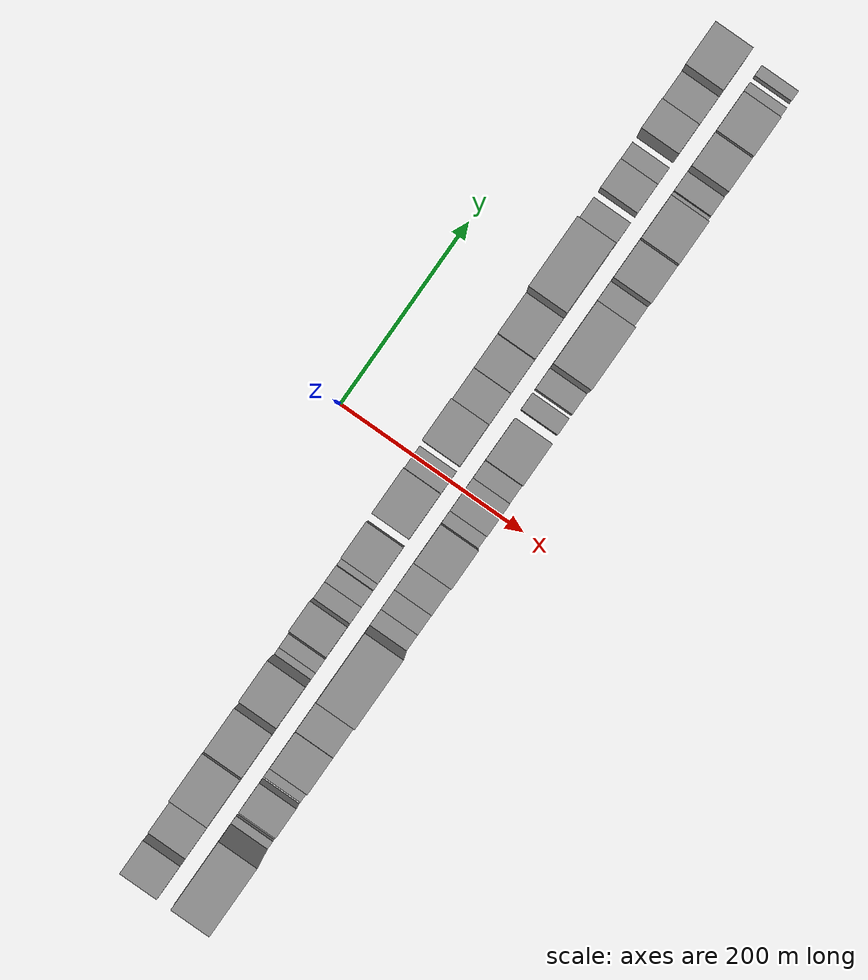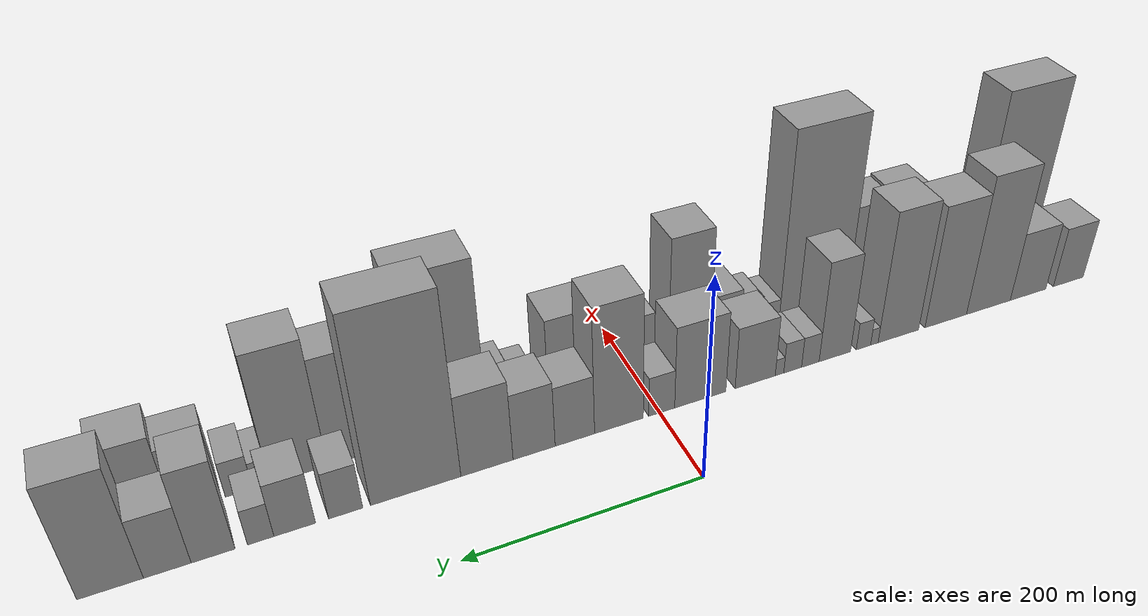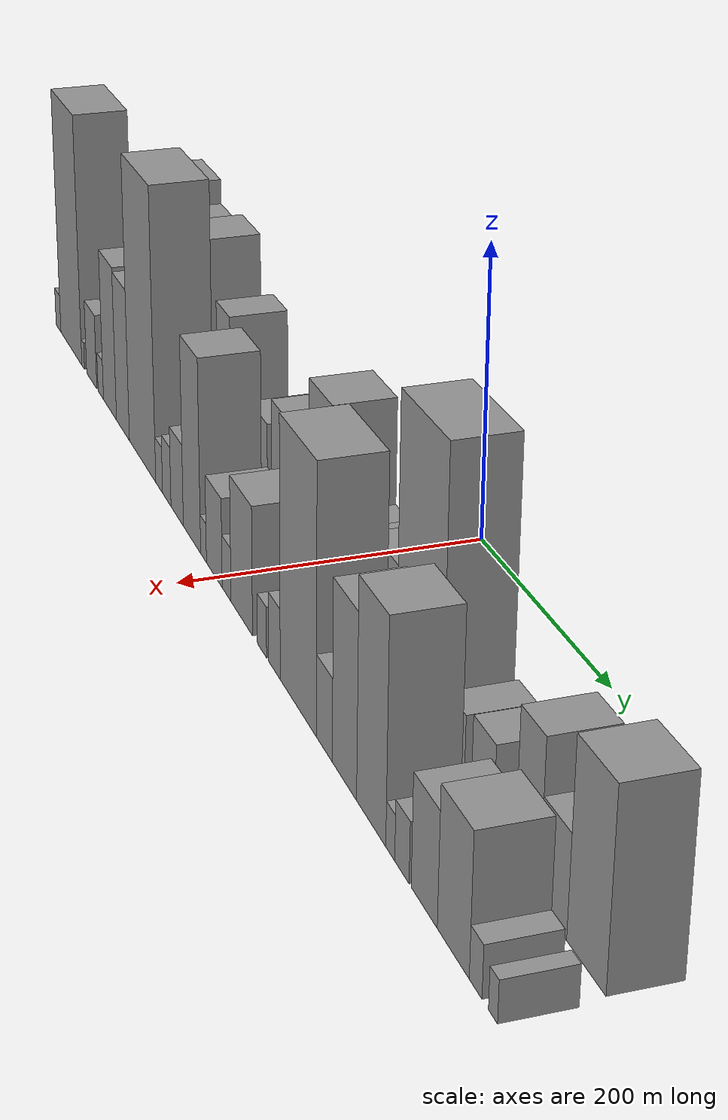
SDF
<sdf version="1.6">
 <world name="default">
  <scene>
   <sky><clouds><speed>12</speed></clouds></sky>
   <ambient>0.4 0.4 0.4 1</ambient>
   <background>0.7 0.7 0.7 1</background>
   <shadows>1</shadows>
  </scene>
  <gravity>0 0 -9.8066</gravity>
  <magnetic_field>6e-06 2.3e-05 -4.2e-05</magnetic_field>
  <physics default="0" name="default_physics" type="ode">
   <ode>
    <solver>
     <type>quick</type>
     <iters>10</iters>
     <sor>1.0</sor>
     <use_dynamic_moi_rescaling>0</use_dynamic_moi_rescaling>
    </solver>
    <constraints>
     <cfm>0</cfm>
     <erp>0.2</erp>
     <contact_max_correcting_vel>100</contact_max_correcting_vel>
     <contact_surface_layer>0.001</contact_surface_layer>
    </constraints>
   </ode>
   <max_step_size>0.004</max_step_size>
   <real_time_factor>1</real_time_factor>
   <real_time_update_rate>250</real_time_update_rate>
  </physics>
  <light name="sun" type="directional">
   <pose>0 0 10 0 0 0</pose>
   <diffuse>0.8 0.8 0.8 1</diffuse>
   <specular>0.2 0.2 0.2 1</specular>
   <attenuation>
    <range>1000</range>
    <constant>0.9</constant>
    <linear>0.01</linear>
    <quadratic>0.001</quadratic>
   </attenuation>
   <direction>-0.5 0.1 -0.9</direction>
  </light>
  <model name="building_1">
   <static>1</static>
   <pose>100.0000 -432.0484 0 0.000000 0.000000 0.000000</pose>
   <link name="link">
    <pose>0 0 33.00 0 0 0</pose>
    <collision name="collision"><geometry><box><size>40.0000 35.9032 66.0000</size></box></geometry></collision>
    <visual name="visual">
     <cast_shadows>0</cast_shadows>
     <geometry><box><size>40.0000 35.9032 66.0000</size></box></geometry>
     <material>
      <script>
       <uri>model://grey_wall/materials/scripts</uri>
       <uri>model://grey_wall/materials/textures</uri>
       <name>vrc/grey_wall</name>
      </script>
     </material>
    </visual>
   </link>
  </model>
  <model name="building_2">
   <static>1</static>
   <pose>100.0000 -384.2388 0 0.000000 0.000000 0.000000</pose>
   <link name="link">
    <pose>0 0 37.50 0 0 0</pose>
    <collision name="collision"><geometry><box><size>40.0000 41.7160 75.0000</size></box></geometry></collision>
    <visual name="visual">
     <cast_shadows>0</cast_shadows>
     <geometry><box><size>40.0000 41.7160 75.0000</size></box></geometry>
     <material>
      <script>
       <uri>model://grey_wall/materials/scripts</uri>
       <uri>model://grey_wall/materials/textures</uri>
       <name>vrc/grey_wall</name>
      </script>
     </material>
    </visual>
   </link>
  </model>
  <model name="building_3">
   <static>1</static>
   <pose>100.0000 -338.3194 0 0.000000 0.000000 0.000000</pose>
   <link name="link">
    <pose>0 0 75.00 0 0 0</pose>
    <collision name="collision"><geometry><box><size>40.0000 50.1228 150.0000</size></box></geometry></collision>
    <visual name="visual">
     <cast_shadows>0</cast_shadows>
     <geometry><box><size>40.0000 50.1228 150.0000</size></box></geometry>
     <material>
      <script>
       <uri>model://grey_wall/materials/scripts</uri>
       <uri>model://grey_wall/materials/textures</uri>
       <name>vrc/grey_wall</name>
      </script>
     </material>
    </visual>
   </link>
  </model>
  <model name="building_4">
   <static>1</static>
   <pose>100.0000 -290.1921 0 0.000000 0.000000 0.000000</pose>
   <link name="link">
    <pose>0 0 66.00 0 0 0</pose>
    <collision name="collision"><geometry><box><size>40.0000 46.1318 132.0000</size></box></geometry></collision>
    <visual name="visual">
     <cast_shadows>0</cast_shadows>
     <geometry><box><size>40.0000 46.1318 132.0000</size></box></geometry>
     <material>
      <script>
       <uri>model://grey_wall/materials/scripts</uri>
       <uri>model://grey_wall/materials/textures</uri>
       <name>vrc/grey_wall</name>
      </script>
     </material>
    </visual>
   </link>
  </model>
  <model name="building_5">
   <static>1</static>
   <pose>100.0000 -238.3165 0 0.000000 0.000000 0.000000</pose>
   <link name="link">
    <pose>0 0 70.50 0 0 0</pose>
    <collision name="collision"><geometry><box><size>40.0000 43.6195 141.0000</size></box></geometry></collision>
    <visual name="visual">
     <cast_shadows>0</cast_shadows>
     <geometry><box><size>40.0000 43.6195 141.0000</size></box></geometry>
     <material>
      <script>
       <uri>model://grey_wall/materials/scripts</uri>
       <uri>model://grey_wall/materials/textures</uri>
       <name>vrc/grey_wall</name>
      </script>
     </material>
    </visual>
   </link>
  </model>
  <model name="building_6">
   <static>1</static>
   <pose>100.0000 -212.5208 0 0.000000 0.000000 0.000000</pose>
   <link name="link">
    <pose>0 0 9.00 0 0 0</pose>
    <collision name="collision"><geometry><box><size>40.0000 7.9718 18.0000</size></box></geometry></collision>
    <visual name="visual">
     <cast_shadows>0</cast_shadows>
     <geometry><box><size>40.0000 7.9718 18.0000</size></box></geometry>
     <material>
      <script>
       <uri>model://grey_wall/materials/scripts</uri>
       <uri>model://grey_wall/materials/textures</uri>
       <name>vrc/grey_wall</name>
      </script>
     </material>
    </visual>
   </link>
  </model>
  <model name="building_7">
   <static>1</static>
   <pose>100.0000 -200.9967 0 0.000000 0.000000 0.000000</pose>
   <link name="link">
    <pose>0 0 15.00 0 0 0</pose>
    <collision name="collision"><geometry><box><size>40.0000 15.0765 30.0000</size></box></geometry></collision>
    <visual name="visual">
     <cast_shadows>0</cast_shadows>
     <geometry><box><size>40.0000 15.0765 30.0000</size></box></geometry>
     <material>
      <script>
       <uri>model://grey_wall/materials/scripts</uri>
       <uri>model://grey_wall/materials/textures</uri>
       <name>vrc/grey_wall</name>
      </script>
     </material>
    </visual>
   </link>
  </model>
  <model name="building_8">
   <static>1</static>
   <pose>100.0000 -171.2387 0 0.000000 0.000000 0.000000</pose>
   <link name="link">
    <pose>0 0 54.00 0 0 0</pose>
    <collision name="collision"><geometry><box><size>40.0000 32.4394 108.0000</size></box></geometry></collision>
    <visual name="visual">
     <cast_shadows>0</cast_shadows>
     <geometry><box><size>40.0000 32.4394 108.0000</size></box></geometry>
     <material>
      <script>
       <uri>model://grey_wall/materials/scripts</uri>
       <uri>model://grey_wall/materials/textures</uri>
       <name>vrc/grey_wall</name>
      </script>
     </material>
    </visual>
   </link>
  </model>
  <model name="building_9">
   <static>1</static>
   <pose>100.0000 -146.1011 0 0.000000 0.000000 0.000000</pose>
   <link name="link">
    <pose>0 0 16.50 0 0 0</pose>
    <collision name="collision"><geometry><box><size>40.0000 17.8359 33.0000</size></box></geometry></collision>
    <visual name="visual">
     <cast_shadows>0</cast_shadows>
     <geometry><box><size>40.0000 17.8359 33.0000</size></box></geometry>
     <material>
      <script>
       <uri>model://grey_wall/materials/scripts</uri>
       <uri>model://grey_wall/materials/textures</uri>
       <name>vrc/grey_wall</name>
      </script>
     </material>
    </visual>
   </link>
  </model>
  <model name="building_10">
   <static>1</static>
   <pose>100.0000 -128.2102 0 0.000000 0.000000 0.000000</pose>
   <link name="link">
    <pose>0 0 16.50 0 0 0</pose>
    <collision name="collision"><geometry><box><size>40.0000 17.9459 33.0000</size></box></geometry></collision>
    <visual name="visual">
     <cast_shadows>0</cast_shadows>
     <geometry><box><size>40.0000 17.9459 33.0000</size></box></geometry>
     <material>
      <script>
       <uri>model://grey_wall/materials/scripts</uri>
       <uri>model://grey_wall/materials/textures</uri>
       <name>vrc/grey_wall</name>
      </script>
     </material>
    </visual>
   </link>
  </model>
  <model name="building_11">
   <static>1</static>
   <pose>100.0000 -115.0051 0 0.000000 0.000000 0.000000</pose>
   <link name="link">
    <pose>0 0 9.00 0 0 0</pose>
    <collision name="collision"><geometry><box><size>40.0000 8.4643 18.0000</size></box></geometry></collision>
    <visual name="visual">
     <cast_shadows>0</cast_shadows>
     <geometry><box><size>40.0000 8.4643 18.0000</size></box></geometry>
     <material>
      <script>
       <uri>model://grey_wall/materials/scripts</uri>
       <uri>model://grey_wall/materials/textures</uri>
       <name>vrc/grey_wall</name>
      </script>
     </material>
    </visual>
   </link>
  </model>
  <model name="building_12">
   <static>1</static>
   <pose>100.0000 -91.0489 0 0.000000 0.000000 0.000000</pose>
   <link name="link">
    <pose>0 0 33.00 0 0 0</pose>
    <collision name="collision"><geometry><box><size>40.0000 39.4481 66.0000</size></box></geometry></collision>
    <visual name="visual">
     <cast_shadows>0</cast_shadows>
     <geometry><box><size>40.0000 39.4481 66.0000</size></box></geometry>
     <material>
      <script>
       <uri>model://grey_wall/materials/scripts</uri>
       <uri>model://grey_wall/materials/textures</uri>
       <name>vrc/grey_wall</name>
      </script>
     </material>
    </visual>
   </link>
  </model>
  <model name="building_13">
   <static>1</static>
   <pose>100.0000 -38.0263 0 0.000000 0.000000 0.000000</pose>
   <link name="link">
    <pose>0 0 43.50 0 0 0</pose>
    <collision name="collision"><geometry><box><size>40.0000 48.5972 87.0000</size></box></geometry></collision>
    <visual name="visual">
     <cast_shadows>0</cast_shadows>
     <geometry><box><size>40.0000 48.5972 87.0000</size></box></geometry>
     <material>
      <script>
       <uri>model://grey_wall/materials/scripts</uri>
       <uri>model://grey_wall/materials/textures</uri>
       <name>vrc/grey_wall</name>
      </script>
     </material>
    </visual>
   </link>
  </model>
  <model name="building_14">
   <static>1</static>
   <pose>100.0000 -1.7117 0 0.000000 0.000000 0.000000</pose>
   <link name="link">
    <pose>0 0 21.00 0 0 0</pose>
    <collision name="collision"><geometry><box><size>40.0000 24.0318 42.0000</size></box></geometry></collision>
    <visual name="visual">
     <cast_shadows>0</cast_shadows>
     <geometry><box><size>40.0000 24.0318 42.0000</size></box></geometry>
     <material>
      <script>
       <uri>model://grey_wall/materials/scripts</uri>
       <uri>model://grey_wall/materials/textures</uri>
       <name>vrc/grey_wall</name>
      </script>
     </material>
    </visual>
   </link>
  </model>
  <model name="building_15">
   <static>1</static>
   <pose>100.0000 37.3353 0 0.000000 0.000000 0.000000</pose>
   <link name="link">
    <pose>0 0 66.00 0 0 0</pose>
    <collision name="collision"><geometry><box><size>40.0000 44.0622 132.0000</size></box></geometry></collision>
    <visual name="visual">
     <cast_shadows>0</cast_shadows>
     <geometry><box><size>40.0000 44.0622 132.0000</size></box></geometry>
     <material>
      <script>
       <uri>model://grey_wall/materials/scripts</uri>
       <uri>model://grey_wall/materials/textures</uri>
       <name>vrc/grey_wall</name>
      </script>
     </material>
    </visual>
   </link>
  </model>
  <model name="building_16">
   <static>1</static>
   <pose>100.0000 76.6974 0 0.000000 0.000000 0.000000</pose>
   <link name="link">
    <pose>0 0 31.50 0 0 0</pose>
    <collision name="collision"><geometry><box><size>40.0000 34.6620 63.0000</size></box></geometry></collision>
    <visual name="visual">
     <cast_shadows>0</cast_shadows>
     <geometry><box><size>40.0000 34.6620 63.0000</size></box></geometry>
     <material>
      <script>
       <uri>model://grey_wall/materials/scripts</uri>
       <uri>model://grey_wall/materials/textures</uri>
       <name>vrc/grey_wall</name>
      </script>
     </material>
    </visual>
   </link>
  </model>
  <model name="building_17">
   <static>1</static>
   <pose>100.0000 112.1259 0 0.000000 0.000000 0.000000</pose>
   <link name="link">
    <pose>0 0 34.50 0 0 0</pose>
    <collision name="collision"><geometry><box><size>40.0000 36.1951 69.0000</size></box></geometry></collision>
    <visual name="visual">
     <cast_shadows>0</cast_shadows>
     <geometry><box><size>40.0000 36.1951 69.0000</size></box></geometry>
     <material>
      <script>
       <uri>model://grey_wall/materials/scripts</uri>
       <uri>model://grey_wall/materials/textures</uri>
       <name>vrc/grey_wall</name>
      </script>
     </material>
    </visual>
   </link>
  </model>
  <model name="building_18">
   <static>1</static>
   <pose>100.0000 152.0441 0 0.000000 0.000000 0.000000</pose>
   <link name="link">
    <pose>0 0 42.00 0 0 0</pose>
    <collision name="collision"><geometry><box><size>40.0000 43.6412 84.0000</size></box></geometry></collision>
    <visual name="visual">
     <cast_shadows>0</cast_shadows>
     <geometry><box><size>40.0000 43.6412 84.0000</size></box></geometry>
     <material>
      <script>
       <uri>model://grey_wall/materials/scripts</uri>
       <uri>model://grey_wall/materials/textures</uri>
       <name>vrc/grey_wall</name>
      </script>
     </material>
    </visual>
   </link>
  </model>
  <model name="building_19">
   <static>1</static>
   <pose>100.0000 210.2167 0 0.000000 0.000000 0.000000</pose>
   <link name="link">
    <pose>0 0 94.50 0 0 0</pose>
    <collision name="collision"><geometry><box><size>40.0000 72.7040 189.0000</size></box></geometry></collision>
    <visual name="visual">
     <cast_shadows>0</cast_shadows>
     <geometry><box><size>40.0000 72.7040 189.0000</size></box></geometry>
     <material>
      <script>
       <uri>model://grey_wall/materials/scripts</uri>
       <uri>model://grey_wall/materials/textures</uri>
       <name>vrc/grey_wall</name>
      </script>
     </material>
    </visual>
   </link>
  </model>
  <model name="building_20">
   <static>1</static>
   <pose>100.0000 265.7631 0 0.000000 0.000000 0.000000</pose>
   <link name="link">
    <pose>0 0 24.00 0 0 0</pose>
    <collision name="collision"><geometry><box><size>40.0000 26.3887 48.0000</size></box></geometry></collision>
    <visual name="visual">
     <cast_shadows>0</cast_shadows>
     <geometry><box><size>40.0000 26.3887 48.0000</size></box></geometry>
     <material>
      <script>
       <uri>model://grey_wall/materials/scripts</uri>
       <uri>model://grey_wall/materials/textures</uri>
       <name>vrc/grey_wall</name>
      </script>
     </material>
    </visual>
   </link>
  </model>
  <model name="building_21">
   <static>1</static>
   <pose>100.0000 304.5854 0 0.000000 0.000000 0.000000</pose>
   <link name="link">
    <pose>0 0 27.00 0 0 0</pose>
    <collision name="collision"><geometry><box><size>40.0000 31.2559 54.0000</size></box></geometry></collision>
    <visual name="visual">
     <cast_shadows>0</cast_shadows>
     <geometry><box><size>40.0000 31.2559 54.0000</size></box></geometry>
     <material>
      <script>
       <uri>model://grey_wall/materials/scripts</uri>
       <uri>model://grey_wall/materials/textures</uri>
       <name>vrc/grey_wall</name>
      </script>
     </material>
    </visual>
   </link>
  </model>
  <model name="building_22">
   <static>1</static>
   <pose>100.0000 329.9657 0 0.000000 0.000000 0.000000</pose>
   <link name="link">
    <pose>0 0 18.00 0 0 0</pose>
    <collision name="collision"><geometry><box><size>40.0000 19.5048 36.0000</size></box></geometry></collision>
    <visual name="visual">
     <cast_shadows>0</cast_shadows>
     <geometry><box><size>40.0000 19.5048 36.0000</size></box></geometry>
     <material>
      <script>
       <uri>model://grey_wall/materials/scripts</uri>
       <uri>model://grey_wall/materials/textures</uri>
       <name>vrc/grey_wall</name>
      </script>
     </material>
    </visual>
   </link>
  </model>
  <model name="building_23">
   <static>1</static>
   <pose>100.0000 364.5164 0 0.000000 0.000000 0.000000</pose>
   <link name="link">
    <pose>0 0 46.50 0 0 0</pose>
    <collision name="collision"><geometry><box><size>40.0000 31.5965 93.0000</size></box></geometry></collision>
    <visual name="visual">
     <cast_shadows>0</cast_shadows>
     <geometry><box><size>40.0000 31.5965 93.0000</size></box></geometry>
     <material>
      <script>
       <uri>model://grey_wall/materials/scripts</uri>
       <uri>model://grey_wall/materials/textures</uri>
       <name>vrc/grey_wall</name>
      </script>
     </material>
    </visual>
   </link>
  </model>
  <model name="building_24">
   <static>1</static>
   <pose>100.0000 397.0532 0 0.000000 0.000000 0.000000</pose>
   <link name="link">
    <pose>0 0 30.00 0 0 0</pose>
    <collision name="collision"><geometry><box><size>40.0000 33.4770 60.0000</size></box></geometry></collision>
    <visual name="visual">
     <cast_shadows>0</cast_shadows>
     <geometry><box><size>40.0000 33.4770 60.0000</size></box></geometry>
     <material>
      <script>
       <uri>model://grey_wall/materials/scripts</uri>
       <uri>model://grey_wall/materials/textures</uri>
       <name>vrc/grey_wall</name>
      </script>
     </material>
    </visual>
   </link>
  </model>
  <model name="building_25">
   <static>1</static>
   <pose>100.0000 436.5346 0 0.000000 0.000000 0.000000</pose>
   <link name="link">
    <pose>0 0 57.00 0 0 0</pose>
    <collision name="collision"><geometry><box><size>40.0000 45.4857 114.0000</size></box></geometry></collision>
    <visual name="visual">
     <cast_shadows>0</cast_shadows>
     <geometry><box><size>40.0000 45.4857 114.0000</size></box></geometry>
     <material>
      <script>
       <uri>model://grey_wall/materials/scripts</uri>
       <uri>model://grey_wall/materials/textures</uri>
       <name>vrc/grey_wall</name>
      </script>
     </material>
    </visual>
   </link>
  </model>
  <model name="building_26">
   <static>1</static>
   <pose>155.0000 -441.6028 0 0.000000 0.000000 0.000000</pose>
   <link name="link">
    <pose>0 0 15.00 0 0 0</pose>
    <collision name="collision"><geometry><box><size>40.0000 16.7943 30.0000</size></box></geometry></collision>
    <visual name="visual">
     <cast_shadows>0</cast_shadows>
     <geometry><box><size>40.0000 16.7943 30.0000</size></box></geometry>
     <material>
      <script>
       <uri>model://grey_wall/materials/scripts</uri>
       <uri>model://grey_wall/materials/textures</uri>
       <name>vrc/grey_wall</name>
      </script>
     </material>
    </visual>
   </link>
  </model>
  <model name="building_27">
   <static>1</static>
   <pose>155.0000 -397.8201 0 0.000000 0.000000 0.000000</pose>
   <link name="link">
    <pose>0 0 96.00 0 0 0</pose>
    <collision name="collision"><geometry><box><size>40.0000 70.7711 192.0000</size></box></geometry></collision>
    <visual name="visual">
     <cast_shadows>0</cast_shadows>
     <geometry><box><size>40.0000 70.7711 192.0000</size></box></geometry>
     <material>
      <script>
       <uri>model://grey_wall/materials/scripts</uri>
       <uri>model://grey_wall/materials/textures</uri>
       <name>vrc/grey_wall</name>
      </script>
     </material>
    </visual>
   </link>
  </model>
  <model name="building_28">
   <static>1</static>
   <pose>155.0000 -358.2051 0 0.000000 0.000000 0.000000</pose>
   <link name="link">
    <pose>0 0 10.50 0 0 0</pose>
    <collision name="collision"><geometry><box><size>40.0000 8.4590 21.0000</size></box></geometry></collision>
    <visual name="visual">
     <cast_shadows>0</cast_shadows>
     <geometry><box><size>40.0000 8.4590 21.0000</size></box></geometry>
     <material>
      <script>
       <uri>model://grey_wall/materials/scripts</uri>
       <uri>model://grey_wall/materials/textures</uri>
       <name>vrc/grey_wall</name>
      </script>
     </material>
    </visual>
   </link>
  </model>
  <model name="building_29">
   <static>1</static>
   <pose>155.0000 -330.8779 0 0.000000 0.000000 0.000000</pose>
   <link name="link">
    <pose>0 0 28.50 0 0 0</pose>
    <collision name="collision"><geometry><box><size>40.0000 32.1955 57.0000</size></box></geometry></collision>
    <visual name="visual">
     <cast_shadows>0</cast_shadows>
     <geometry><box><size>40.0000 32.1955 57.0000</size></box></geometry>
     <material>
      <script>
       <uri>model://grey_wall/materials/scripts</uri>
       <uri>model://grey_wall/materials/textures</uri>
       <name>vrc/grey_wall</name>
      </script>
     </material>
    </visual>
   </link>
  </model>
  <model name="building_30">
   <static>1</static>
   <pose>155.0000 -302.4395 0 0.000000 0.000000 0.000000</pose>
   <link name="link">
    <pose>0 0 15.00 0 0 0</pose>
    <collision name="collision"><geometry><box><size>40.0000 16.6812 30.0000</size></box></geometry></collision>
    <visual name="visual">
     <cast_shadows>0</cast_shadows>
     <geometry><box><size>40.0000 16.6812 30.0000</size></box></geometry>
     <material>
      <script>
       <uri>model://grey_wall/materials/scripts</uri>
       <uri>model://grey_wall/materials/textures</uri>
       <name>vrc/grey_wall</name>
      </script>
     </material>
    </visual>
   </link>
  </model>
  <model name="building_31">
   <static>1</static>
   <pose>155.0000 -274.6163 0 0.000000 0.000000 0.000000</pose>
   <link name="link">
    <pose>0 0 57.00 0 0 0</pose>
    <collision name="collision"><geometry><box><size>40.0000 38.9651 114.0000</size></box></geometry></collision>
    <visual name="visual">
     <cast_shadows>0</cast_shadows>
     <geometry><box><size>40.0000 38.9651 114.0000</size></box></geometry>
     <material>
      <script>
       <uri>model://grey_wall/materials/scripts</uri>
       <uri>model://grey_wall/materials/textures</uri>
       <name>vrc/grey_wall</name>
      </script>
     </material>
    </visual>
   </link>
  </model>
  <model name="building_32">
   <static>1</static>
   <pose>155.0000 -236.4197 0 0.000000 0.000000 0.000000</pose>
   <link name="link">
    <pose>0 0 55.50 0 0 0</pose>
    <collision name="collision"><geometry><box><size>40.0000 37.4281 111.0000</size></box></geometry></collision>
    <visual name="visual">
     <cast_shadows>0</cast_shadows>
     <geometry><box><size>40.0000 37.4281 111.0000</size></box></geometry>
     <material>
      <script>
       <uri>model://grey_wall/materials/scripts</uri>
       <uri>model://grey_wall/materials/textures</uri>
       <name>vrc/grey_wall</name>
      </script>
     </material>
    </visual>
   </link>
  </model>
  <model name="building_33">
   <static>1</static>
   <pose>155.0000 -181.7730 0 0.000000 0.000000 0.000000</pose>
   <link name="link">
    <pose>0 0 103.50 0 0 0</pose>
    <collision name="collision"><geometry><box><size>40.0000 71.8654 207.0000</size></box></geometry></collision>
    <visual name="visual">
     <cast_shadows>0</cast_shadows>
     <geometry><box><size>40.0000 71.8654 207.0000</size></box></geometry>
     <material>
      <script>
       <uri>model://grey_wall/materials/scripts</uri>
       <uri>model://grey_wall/materials/textures</uri>
       <name>vrc/grey_wall</name>
      </script>
     </material>
    </visual>
   </link>
  </model>
  <model name="building_34">
   <static>1</static>
   <pose>155.0000 -137.0189 0 0.000000 0.000000 0.000000</pose>
   <link name="link">
    <pose>0 0 16.50 0 0 0</pose>
    <collision name="collision"><geometry><box><size>40.0000 17.6427 33.0000</size></box></geometry></collision>
    <visual name="visual">
     <cast_shadows>0</cast_shadows>
     <geometry><box><size>40.0000 17.6427 33.0000</size></box></geometry>
     <material>
      <script>
       <uri>model://grey_wall/materials/scripts</uri>
       <uri>model://grey_wall/materials/textures</uri>
       <name>vrc/grey_wall</name>
      </script>
     </material>
    </visual>
   </link>
  </model>
  <model name="building_35">
   <static>1</static>
   <pose>155.0000 -117.4254 0 0.000000 0.000000 0.000000</pose>
   <link name="link">
    <pose>0 0 21.00 0 0 0</pose>
    <collision name="collision"><geometry><box><size>40.0000 21.5443 42.0000</size></box></geometry></collision>
    <visual name="visual">
     <cast_shadows>0</cast_shadows>
     <geometry><box><size>40.0000 21.5443 42.0000</size></box></geometry>
     <material>
      <script>
       <uri>model://grey_wall/materials/scripts</uri>
       <uri>model://grey_wall/materials/textures</uri>
       <name>vrc/grey_wall</name>
      </script>
     </material>
    </visual>
   </link>
  </model>
  <model name="building_36">
   <static>1</static>
   <pose>155.0000 -91.2971 0 0.000000 0.000000 0.000000</pose>
   <link name="link">
    <pose>0 0 28.50 0 0 0</pose>
    <collision name="collision"><geometry><box><size>40.0000 30.7123 57.0000</size></box></geometry></collision>
    <visual name="visual">
     <cast_shadows>0</cast_shadows>
     <geometry><box><size>40.0000 30.7123 57.0000</size></box></geometry>
     <material>
      <script>
       <uri>model://grey_wall/materials/scripts</uri>
       <uri>model://grey_wall/materials/textures</uri>
       <name>vrc/grey_wall</name>
      </script>
     </material>
    </visual>
   </link>
  </model>
  <model name="building_37">
   <static>1</static>
   <pose>155.0000 -55.3726 0 0.000000 0.000000 0.000000</pose>
   <link name="link">
    <pose>0 0 66.00 0 0 0</pose>
    <collision name="collision"><geometry><box><size>40.0000 41.1367 132.0000</size></box></geometry></collision>
    <visual name="visual">
     <cast_shadows>0</cast_shadows>
     <geometry><box><size>40.0000 41.1367 132.0000</size></box></geometry>
     <material>
      <script>
       <uri>model://grey_wall/materials/scripts</uri>
       <uri>model://grey_wall/materials/textures</uri>
       <name>vrc/grey_wall</name>
      </script>
     </material>
    </visual>
   </link>
  </model>
  <model name="building_38">
   <static>1</static>
   <pose>155.0000 -28.1256 0 0.000000 0.000000 0.000000</pose>
   <link name="link">
    <pose>0 0 13.50 0 0 0</pose>
    <collision name="collision"><geometry><box><size>40.0000 13.3572 27.0000</size></box></geometry></collision>
    <visual name="visual">
     <cast_shadows>0</cast_shadows>
     <geometry><box><size>40.0000 13.3572 27.0000</size></box></geometry>
     <material>
      <script>
       <uri>model://grey_wall/materials/scripts</uri>
       <uri>model://grey_wall/materials/textures</uri>
       <name>vrc/grey_wall</name>
      </script>
     </material>
    </visual>
   </link>
  </model>
  <model name="building_39">
   <static>1</static>
   <pose>155.0000 -3.6810 0 0.000000 0.000000 0.000000</pose>
   <link name="link">
    <pose>0 0 30.00 0 0 0</pose>
    <collision name="collision"><geometry><box><size>40.0000 35.5319 60.0000</size></box></geometry></collision>
    <visual name="visual">
     <cast_shadows>0</cast_shadows>
     <geometry><box><size>40.0000 35.5319 60.0000</size></box></geometry>
     <material>
      <script>
       <uri>model://grey_wall/materials/scripts</uri>
       <uri>model://grey_wall/materials/textures</uri>
       <name>vrc/grey_wall</name>
      </script>
     </material>
    </visual>
   </link>
  </model>
  <model name="building_40">
   <static>1</static>
   <pose>155.0000 23.6299 0 0.000000 0.000000 0.000000</pose>
   <link name="link">
    <pose>0 0 18.00 0 0 0</pose>
    <collision name="collision"><geometry><box><size>40.0000 19.0899 36.0000</size></box></geometry></collision>
    <visual name="visual">
     <cast_shadows>0</cast_shadows>
     <geometry><box><size>40.0000 19.0899 36.0000</size></box></geometry>
     <material>
      <script>
       <uri>model://grey_wall/materials/scripts</uri>
       <uri>model://grey_wall/materials/textures</uri>
       <name>vrc/grey_wall</name>
      </script>
     </material>
    </visual>
   </link>
  </model>
  <model name="building_41">
   <static>1</static>
   <pose>155.0000 55.7458 0 0.000000 0.000000 0.000000</pose>
   <link name="link">
    <pose>0 0 42.00 0 0 0</pose>
    <collision name="collision"><geometry><box><size>40.0000 45.1417 84.0000</size></box></geometry></collision>
    <visual name="visual">
     <cast_shadows>0</cast_shadows>
     <geometry><box><size>40.0000 45.1417 84.0000</size></box></geometry>
     <material>
      <script>
       <uri>model://grey_wall/materials/scripts</uri>
       <uri>model://grey_wall/materials/textures</uri>
       <name>vrc/grey_wall</name>
      </script>
     </material>
    </visual>
   </link>
  </model>
  <model name="building_42">
   <static>1</static>
   <pose>155.0000 97.3901 0 0.000000 0.000000 0.000000</pose>
   <link name="link">
    <pose>0 0 16.50 0 0 0</pose>
    <collision name="collision"><geometry><box><size>40.0000 18.1469 33.0000</size></box></geometry></collision>
    <visual name="visual">
     <cast_shadows>0</cast_shadows>
     <geometry><box><size>40.0000 18.1469 33.0000</size></box></geometry>
     <material>
      <script>
       <uri>model://grey_wall/materials/scripts</uri>
       <uri>model://grey_wall/materials/textures</uri>
       <name>vrc/grey_wall</name>
      </script>
     </material>
    </visual>
   </link>
  </model>
  <model name="building_43">
   <static>1</static>
   <pose>155.0000 121.7363 0 0.000000 0.000000 0.000000</pose>
   <link name="link">
    <pose>0 0 22.50 0 0 0</pose>
    <collision name="collision"><geometry><box><size>40.0000 22.5455 45.0000</size></box></geometry></collision>
    <visual name="visual">
     <cast_shadows>0</cast_shadows>
     <geometry><box><size>40.0000 22.5455 45.0000</size></box></geometry>
     <material>
      <script>
       <uri>model://grey_wall/materials/scripts</uri>
       <uri>model://grey_wall/materials/textures</uri>
       <name>vrc/grey_wall</name>
      </script>
     </material>
    </visual>
   </link>
  </model>
  <model name="building_44">
   <static>1</static>
   <pose>155.0000 165.9777 0 0.000000 0.000000 0.000000</pose>
   <link name="link">
    <pose>0 0 82.50 0 0 0</pose>
    <collision name="collision"><geometry><box><size>40.0000 65.9374 165.0000</size></box></geometry></collision>
    <visual name="visual">
     <cast_shadows>0</cast_shadows>
     <geometry><box><size>40.0000 65.9374 165.0000</size></box></geometry>
     <material>
      <script>
       <uri>model://grey_wall/materials/scripts</uri>
       <uri>model://grey_wall/materials/textures</uri>
       <name>vrc/grey_wall</name>
      </script>
     </material>
    </visual>
   </link>
  </model>
  <model name="building_45">
   <static>1</static>
   <pose>155.0000 212.7716 0 0.000000 0.000000 0.000000</pose>
   <link name="link">
    <pose>0 0 25.50 0 0 0</pose>
    <collision name="collision"><geometry><box><size>40.0000 27.6503 51.0000</size></box></geometry></collision>
    <visual name="visual">
     <cast_shadows>0</cast_shadows>
     <geometry><box><size>40.0000 27.6503 51.0000</size></box></geometry>
     <material>
      <script>
       <uri>model://grey_wall/materials/scripts</uri>
       <uri>model://grey_wall/materials/textures</uri>
       <name>vrc/grey_wall</name>
      </script>
     </material>
    </visual>
   </link>
  </model>
  <model name="building_46">
   <static>1</static>
   <pose>155.0000 246.6674 0 0.000000 0.000000 0.000000</pose>
   <link name="link">
    <pose>0 0 55.50 0 0 0</pose>
    <collision name="collision"><geometry><box><size>40.0000 40.1415 111.0000</size></box></geometry></collision>
    <visual name="visual">
     <cast_shadows>0</cast_shadows>
     <geometry><box><size>40.0000 40.1415 111.0000</size></box></geometry>
     <material>
      <script>
       <uri>model://grey_wall/materials/scripts</uri>
       <uri>model://grey_wall/materials/textures</uri>
       <name>vrc/grey_wall</name>
      </script>
     </material>
    </visual>
   </link>
  </model>
  <model name="building_47">
   <static>1</static>
   <pose>155.0000 289.4686 0 0.000000 0.000000 0.000000</pose>
   <link name="link">
    <pose>0 0 66.00 0 0 0</pose>
    <collision name="collision"><geometry><box><size>40.0000 45.4609 132.0000</size></box></geometry></collision>
    <visual name="visual">
     <cast_shadows>0</cast_shadows>
     <geometry><box><size>40.0000 45.4609 132.0000</size></box></geometry>
     <material>
      <script>
       <uri>model://grey_wall/materials/scripts</uri>
       <uri>model://grey_wall/materials/textures</uri>
       <name>vrc/grey_wall</name>
      </script>
     </material>
    </visual>
   </link>
  </model>
  <model name="building_48">
   <static>1</static>
   <pose>155.0000 318.9162 0 0.000000 0.000000 0.000000</pose>
   <link name="link">
    <pose>0 0 13.50 0 0 0</pose>
    <collision name="collision"><geometry><box><size>40.0000 13.4343 27.0000</size></box></geometry></collision>
    <visual name="visual">
     <cast_shadows>0</cast_shadows>
     <geometry><box><size>40.0000 13.4343 27.0000</size></box></geometry>
     <material>
      <script>
       <uri>model://grey_wall/materials/scripts</uri>
       <uri>model://grey_wall/materials/textures</uri>
       <name>vrc/grey_wall</name>
      </script>
     </material>
    </visual>
   </link>
  </model>
  <model name="building_49">
   <static>1</static>
   <pose>155.0000 336.0787 0 0.000000 0.000000 0.000000</pose>
   <link name="link">
    <pose>0 0 18.00 0 0 0</pose>
    <collision name="collision"><geometry><box><size>40.0000 20.8907 36.0000</size></box></geometry></collision>
    <visual name="visual">
     <cast_shadows>0</cast_shadows>
     <geometry><box><size>40.0000 20.8907 36.0000</size></box></geometry>
     <material>
      <script>
       <uri>model://grey_wall/materials/scripts</uri>
       <uri>model://grey_wall/materials/textures</uri>
       <name>vrc/grey_wall</name>
      </script>
     </material>
    </visual>
   </link>
  </model>
  <model name="building_50">
   <static>1</static>
   <pose>155.0000 367.7245 0 0.000000 0.000000 0.000000</pose>
   <link name="link">
    <pose>0 0 33.00 0 0 0</pose>
    <collision name="collision"><geometry><box><size>40.0000 36.4009 66.0000</size></box></geometry></collision>
    <visual name="visual">
     <cast_shadows>0</cast_shadows>
     <geometry><box><size>40.0000 36.4009 66.0000</size></box></geometry>
     <material>
      <script>
       <uri>model://grey_wall/materials/scripts</uri>
       <uri>model://grey_wall/materials/textures</uri>
       <name>vrc/grey_wall</name>
      </script>
     </material>
    </visual>
   </link>
  </model>
  <model name="building_51">
   <static>1</static>
   <pose>155.0000 406.9504 0 0.000000 0.000000 0.000000</pose>
   <link name="link">
    <pose>0 0 40.50 0 0 0</pose>
    <collision name="collision"><geometry><box><size>40.0000 42.0509 81.0000</size></box></geometry></collision>
    <visual name="visual">
     <cast_shadows>0</cast_shadows>
     <geometry><box><size>40.0000 42.0509 81.0000</size></box></geometry>
     <material>
      <script>
       <uri>model://grey_wall/materials/scripts</uri>
       <uri>model://grey_wall/materials/textures</uri>
       <name>vrc/grey_wall</name>
      </script>
     </material>
    </visual>
   </link>
  </model>
  <model name="building_52">
   <static>1</static>
   <pose>155.0000 435.9803 0 0.000000 0.000000 0.000000</pose>
   <link name="link">
    <pose>0 0 15.00 0 0 0</pose>
    <collision name="collision"><geometry><box><size>40.0000 16.0088 30.0000</size></box></geometry></collision>
    <visual name="visual">
     <cast_shadows>0</cast_shadows>
     <geometry><box><size>40.0000 16.0088 30.0000</size></box></geometry>
     <material>
      <script>
       <uri>model://grey_wall/materials/scripts</uri>
       <uri>model://grey_wall/materials/textures</uri>
       <name>vrc/grey_wall</name>
      </script>
     </material>
    </visual>
   </link>
  </model>
  <model name="building_53">
   <static>1</static>
   <pose>155.0000 457.5261 0 0.000000 0.000000 0.000000</pose>
   <link name="link">
    <pose>0 0 12.00 0 0 0</pose>
    <collision name="collision"><geometry><box><size>40.0000 11.0828 24.0000</size></box></geometry></collision>
    <visual name="visual">
     <cast_shadows>0</cast_shadows>
     <geometry><box><size>40.0000 11.0828 24.0000</size></box></geometry>
     <material>
      <script>
       <uri>model://grey_wall/materials/scripts</uri>
       <uri>model://grey_wall/materials/textures</uri>
       <name>vrc/grey_wall</name>
      </script>
     </material>
    </visual>
   </link>
  </model>
 </world>
</sdf>
